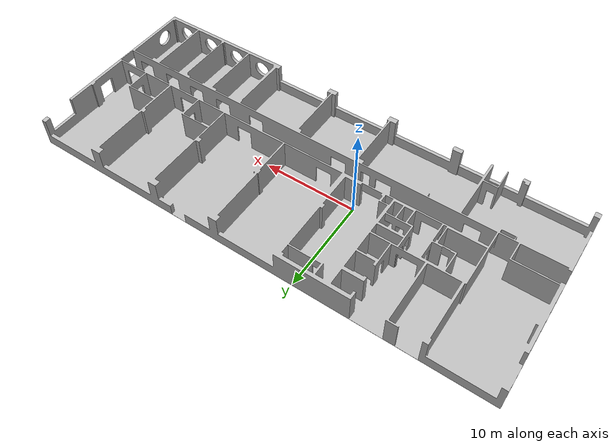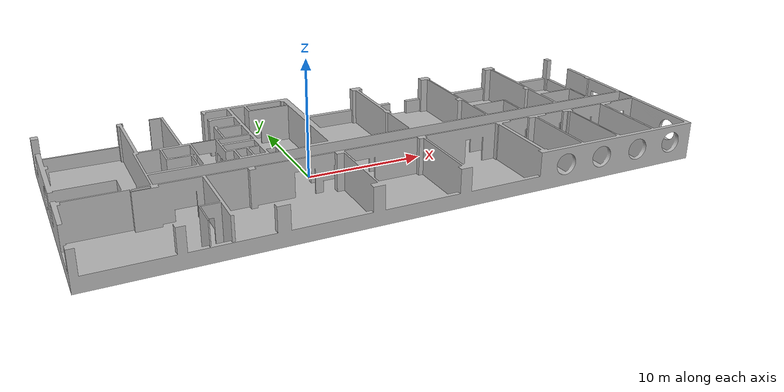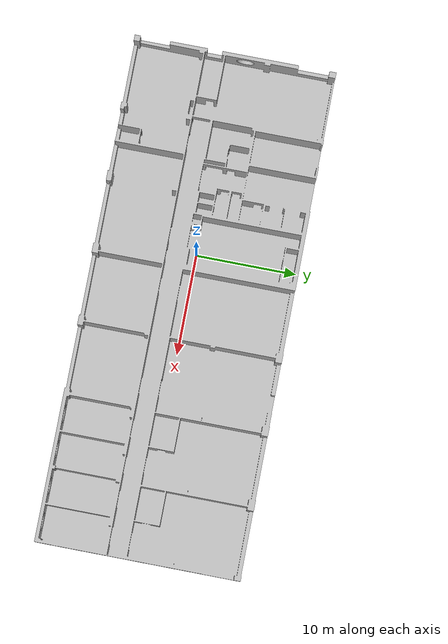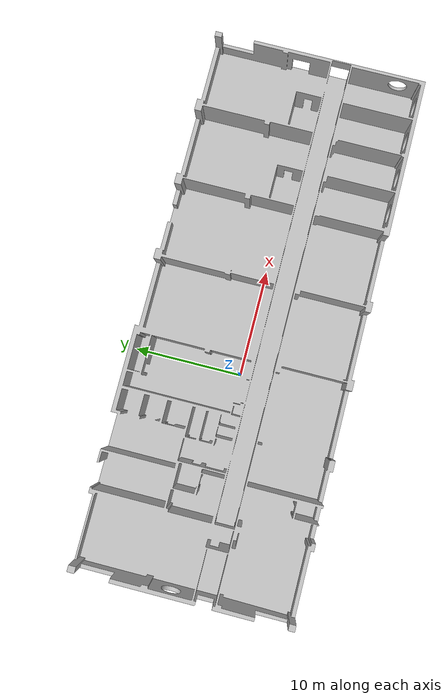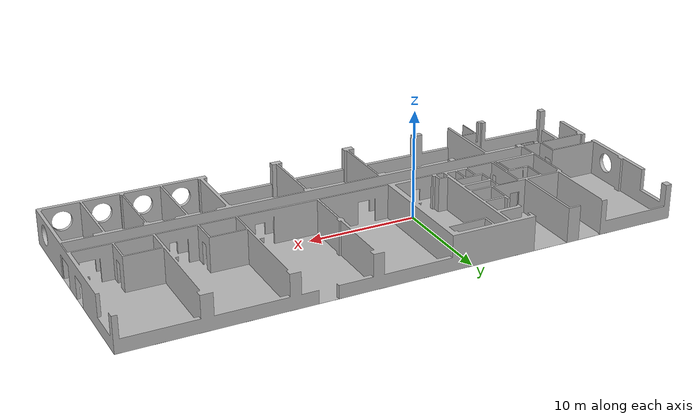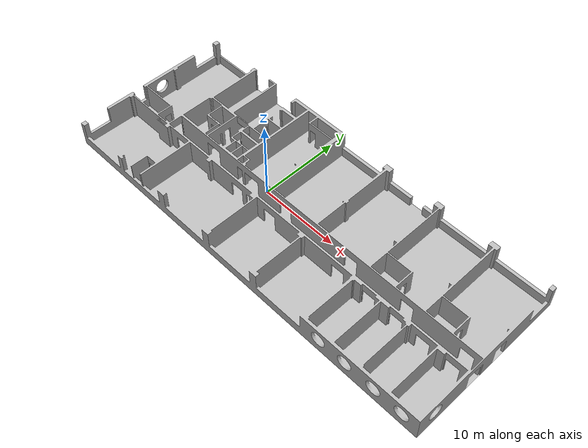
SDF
<?xml version='1.0' encoding='utf-8'?>
<sdf version="1.6">
  <world name="default">

    <gravity>0 0 -9.8</gravity>
    <physics default="0" name="default_physics" type="ode">
      <max_step_size>0.001</max_step_size>
      <real_time_factor>1</real_time_factor>
      <real_time_update_rate>1000</real_time_update_rate>
    </physics>

<model name="Walls_01">
<include>
    <uri>
    model://Walls
    </uri>
</include>
      <pose>-20 -10 0 0 0 0</pose>
</model>

    <light name="sun" type="point">
      <pose frame="">0 0 15 0 0 0</pose>
      <diffuse>0.5 0.5 0.5 1</diffuse>
      <specular>0.2 0.2 0.2 1</specular>
      <attenuation>
        <range>100</range>
        <constant>0.3</constant>
        <linear>0.01</linear>
        <quadratic>0.001</quadratic>
      </attenuation>
      <cast_shadows>1</cast_shadows>
      <direction>0.1 0.1 -1</direction>
    </light>

    <gui fullscreen='0'>
      <camera name='user_camera'>
        <pose frame=''>-4.70385 10.895 16.2659 -0 0.921795 -1.12701</pose>
        <view_controller>orbit</view_controller>
        <projection_type>perspective</projection_type>
      </camera>
    </gui>

  </world>
</sdf>

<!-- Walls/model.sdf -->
<sdf version="1.6">
  <model name='Walls'>
    <static>true</static>
    <link name="body">

        <visual name="visual">
          <geometry>
            <mesh><uri>model://models/Walls/meshes/no_roof_UAMT.dae</uri></mesh>
          </geometry>
        </visual>

        <collision name="collision">
          <geometry>
            <mesh><uri>model://models/Walls/meshes/no_roof_UAMT.dae</uri></mesh>
          </geometry>
        </collision>

    </link>
  </model>
</sdf>
